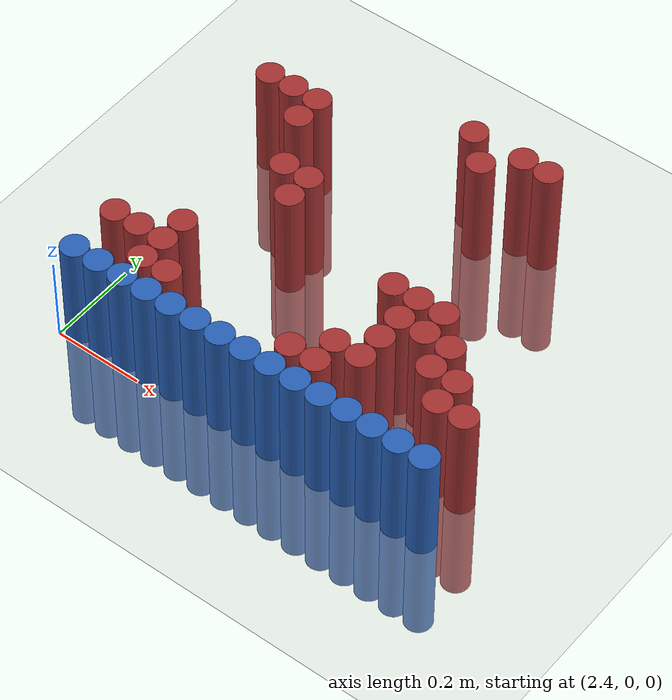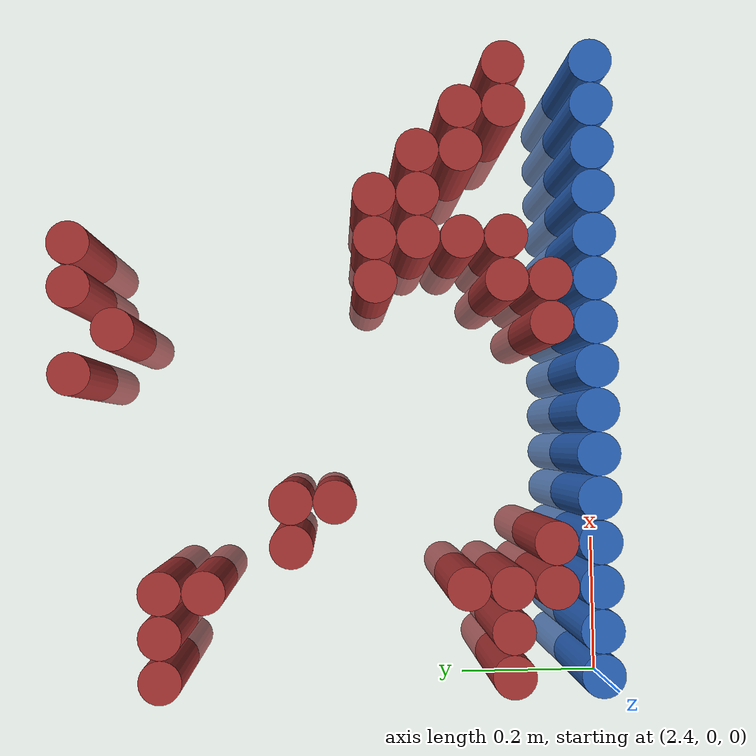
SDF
<sdf version="1.6">
 <world name="default">
  <model name="ground_plane">
   <static>1</static>
   <link name="link">
    <collision name="collision">
     <geometry><plane><normal>0 0 1</normal><size>100 100</size></plane></geometry>
     <surface><friction><ode><mu>100</mu><mu2>50</mu2></ode></friction></surface>
    </collision>
    <visual name="visual">
     <cast_shadows>0</cast_shadows>
     <geometry><plane><normal>0 0 1</normal><size>100 100</size></plane></geometry>
     <material>
      <script><uri>file://media/materials/scripts/gazebo.material</uri><name>Gazebo/Grey</name></script>
     </material>
    </visual>
   </link>
  </model>
  <model name="unit_cylinder_217">
   <static>1</static>
   <pose>2.850000 0.750000 0.000000 0.000000 0.000000 0.000000</pose>
   <link name="link">
    <inertial>
     <mass>1</mass>
     <inertia><ixx>0.145833</ixx><ixy>0</ixy><ixz>0</ixz><iyy>0.145833</iyy><iyz>0</iyz><izz>0.125</izz></inertia>
    </inertial>
    <collision name="collision">
     <geometry><cylinder><radius>0.030000</radius><length>0.5</length></cylinder></geometry>
    </collision>
    <visual name="visual">
     <geometry><cylinder><radius>0.030000</radius><length>0.5</length></cylinder></geometry>
     <material>
      <ambient>0.648000 0.192000 0.192000 1</ambient>
      <diffuse>0.648000 0.192000 0.192000 1</diffuse>
     </material>
     <material>
      <script><name>Gazebo/Grey</name><uri>file://media/materials/scripts/gazebo.material</uri></script>
     </material>
    </visual>
   </link>
  </model>
  <model name="unit_cylinder_218">
   <static>1</static>
   <pose>2.970000 0.750000 0.000000 0.000000 0.000000 0.000000</pose>
   <link name="link">
    <inertial>
     <mass>1</mass>
     <inertia><ixx>0.145833</ixx><ixy>0</ixy><ixz>0</ixz><iyy>0.145833</iyy><iyz>0</iyz><izz>0.125</izz></inertia>
    </inertial>
    <collision name="collision">
     <geometry><cylinder><radius>0.030000</radius><length>0.5</length></cylinder></geometry>
    </collision>
    <visual name="visual">
     <geometry><cylinder><radius>0.030000</radius><length>0.5</length></cylinder></geometry>
     <material>
      <ambient>0.648000 0.192000 0.192000 1</ambient>
      <diffuse>0.648000 0.192000 0.192000 1</diffuse>
     </material>
     <material>
      <script><name>Gazebo/Grey</name><uri>file://media/materials/scripts/gazebo.material</uri></script>
     </material>
    </visual>
   </link>
  </model>
  <model name="unit_cylinder_219">
   <static>1</static>
   <pose>3.030000 0.750000 0.000000 0.000000 0.000000 0.000000</pose>
   <link name="link">
    <inertial>
     <mass>1</mass>
     <inertia><ixx>0.145833</ixx><ixy>0</ixy><ixz>0</ixz><iyy>0.145833</iyy><iyz>0</iyz><izz>0.125</izz></inertia>
    </inertial>
    <collision name="collision">
     <geometry><cylinder><radius>0.030000</radius><length>0.5</length></cylinder></geometry>
    </collision>
    <visual name="visual">
     <geometry><cylinder><radius>0.030000</radius><length>0.5</length></cylinder></geometry>
     <material>
      <ambient>0.648000 0.192000 0.192000 1</ambient>
      <diffuse>0.648000 0.192000 0.192000 1</diffuse>
     </material>
     <material>
      <script><name>Gazebo/Grey</name><uri>file://media/materials/scripts/gazebo.material</uri></script>
     </material>
    </visual>
   </link>
  </model>
  <model name="unit_cylinder_231">
   <static>1</static>
   <pose>2.910000 0.690000 0.000000 0.000000 0.000000 0.000000</pose>
   <link name="link">
    <inertial>
     <mass>1</mass>
     <inertia><ixx>0.145833</ixx><ixy>0</ixy><ixz>0</ixz><iyy>0.145833</iyy><iyz>0</iyz><izz>0.125</izz></inertia>
    </inertial>
    <collision name="collision">
     <geometry><cylinder><radius>0.030000</radius><length>0.5</length></cylinder></geometry>
    </collision>
    <visual name="visual">
     <geometry><cylinder><radius>0.030000</radius><length>0.5</length></cylinder></geometry>
     <material>
      <ambient>0.648000 0.192000 0.192000 1</ambient>
      <diffuse>0.648000 0.192000 0.192000 1</diffuse>
     </material>
     <material>
      <script><name>Gazebo/Grey</name><uri>file://media/materials/scripts/gazebo.material</uri></script>
     </material>
    </visual>
   </link>
  </model>
  <model name="unit_cylinder_238">
   <static>1</static>
   <pose>2.430000 0.630000 0.000000 0.000000 0.000000 0.000000</pose>
   <link name="link">
    <inertial>
     <mass>1</mass>
     <inertia><ixx>0.145833</ixx><ixy>0</ixy><ixz>0</ixz><iyy>0.145833</iyy><iyz>0</iyz><izz>0.125</izz></inertia>
    </inertial>
    <collision name="collision">
     <geometry><cylinder><radius>0.030000</radius><length>0.5</length></cylinder></geometry>
    </collision>
    <visual name="visual">
     <geometry><cylinder><radius>0.030000</radius><length>0.5</length></cylinder></geometry>
     <material>
      <ambient>0.648000 0.192000 0.192000 1</ambient>
      <diffuse>0.648000 0.192000 0.192000 1</diffuse>
     </material>
     <material>
      <script><name>Gazebo/Grey</name><uri>file://media/materials/scripts/gazebo.material</uri></script>
     </material>
    </visual>
   </link>
  </model>
  <model name="unit_cylinder_239">
   <static>1</static>
   <pose>2.490000 0.630000 0.000000 0.000000 0.000000 0.000000</pose>
   <link name="link">
    <inertial>
     <mass>1</mass>
     <inertia><ixx>0.145833</ixx><ixy>0</ixy><ixz>0</ixz><iyy>0.145833</iyy><iyz>0</iyz><izz>0.125</izz></inertia>
    </inertial>
    <collision name="collision">
     <geometry><cylinder><radius>0.030000</radius><length>0.5</length></cylinder></geometry>
    </collision>
    <visual name="visual">
     <geometry><cylinder><radius>0.030000</radius><length>0.5</length></cylinder></geometry>
     <material>
      <ambient>0.648000 0.192000 0.192000 1</ambient>
      <diffuse>0.648000 0.192000 0.192000 1</diffuse>
     </material>
     <material>
      <script><name>Gazebo/Grey</name><uri>file://media/materials/scripts/gazebo.material</uri></script>
     </material>
    </visual>
   </link>
  </model>
  <model name="unit_cylinder_240">
   <static>1</static>
   <pose>2.550000 0.630000 0.000000 0.000000 0.000000 0.000000</pose>
   <link name="link">
    <inertial>
     <mass>1</mass>
     <inertia><ixx>0.145833</ixx><ixy>0</ixy><ixz>0</ixz><iyy>0.145833</iyy><iyz>0</iyz><izz>0.125</izz></inertia>
    </inertial>
    <collision name="collision">
     <geometry><cylinder><radius>0.030000</radius><length>0.5</length></cylinder></geometry>
    </collision>
    <visual name="visual">
     <geometry><cylinder><radius>0.030000</radius><length>0.5</length></cylinder></geometry>
     <material>
      <ambient>0.648000 0.192000 0.192000 1</ambient>
      <diffuse>0.648000 0.192000 0.192000 1</diffuse>
     </material>
     <material>
      <script><name>Gazebo/Grey</name><uri>file://media/materials/scripts/gazebo.material</uri></script>
     </material>
    </visual>
   </link>
  </model>
  <model name="unit_cylinder_245">
   <static>1</static>
   <pose>2.550000 0.570000 0.000000 0.000000 0.000000 0.000000</pose>
   <link name="link">
    <inertial>
     <mass>1</mass>
     <inertia><ixx>0.145833</ixx><ixy>0</ixy><ixz>0</ixz><iyy>0.145833</iyy><iyz>0</iyz><izz>0.125</izz></inertia>
    </inertial>
    <collision name="collision">
     <geometry><cylinder><radius>0.030000</radius><length>0.5</length></cylinder></geometry>
    </collision>
    <visual name="visual">
     <geometry><cylinder><radius>0.030000</radius><length>0.5</length></cylinder></geometry>
     <material>
      <ambient>0.648000 0.192000 0.192000 1</ambient>
      <diffuse>0.648000 0.192000 0.192000 1</diffuse>
     </material>
     <material>
      <script><name>Gazebo/Grey</name><uri>file://media/materials/scripts/gazebo.material</uri></script>
     </material>
    </visual>
   </link>
  </model>
  <model name="unit_cylinder_252">
   <static>1</static>
   <pose>2.610000 0.450000 0.000000 0.000000 0.000000 0.000000</pose>
   <link name="link">
    <inertial>
     <mass>1</mass>
     <inertia><ixx>0.145833</ixx><ixy>0</ixy><ixz>0</ixz><iyy>0.145833</iyy><iyz>0</iyz><izz>0.125</izz></inertia>
    </inertial>
    <collision name="collision">
     <geometry><cylinder><radius>0.030000</radius><length>0.5</length></cylinder></geometry>
    </collision>
    <visual name="visual">
     <geometry><cylinder><radius>0.030000</radius><length>0.5</length></cylinder></geometry>
     <material>
      <ambient>0.648000 0.192000 0.192000 1</ambient>
      <diffuse>0.648000 0.192000 0.192000 1</diffuse>
     </material>
     <material>
      <script><name>Gazebo/Grey</name><uri>file://media/materials/scripts/gazebo.material</uri></script>
     </material>
    </visual>
   </link>
  </model>
  <model name="unit_cylinder_253">
   <static>1</static>
   <pose>2.670000 0.450000 0.000000 0.000000 0.000000 0.000000</pose>
   <link name="link">
    <inertial>
     <mass>1</mass>
     <inertia><ixx>0.145833</ixx><ixy>0</ixy><ixz>0</ixz><iyy>0.145833</iyy><iyz>0</iyz><izz>0.125</izz></inertia>
    </inertial>
    <collision name="collision">
     <geometry><cylinder><radius>0.030000</radius><length>0.5</length></cylinder></geometry>
    </collision>
    <visual name="visual">
     <geometry><cylinder><radius>0.030000</radius><length>0.5</length></cylinder></geometry>
     <material>
      <ambient>0.648000 0.192000 0.192000 1</ambient>
      <diffuse>0.648000 0.192000 0.192000 1</diffuse>
     </material>
     <material>
      <script><name>Gazebo/Grey</name><uri>file://media/materials/scripts/gazebo.material</uri></script>
     </material>
    </visual>
   </link>
  </model>
  <model name="unit_cylinder_254">
   <static>1</static>
   <pose>2.670000 0.390000 0.000000 0.000000 0.000000 0.000000</pose>
   <link name="link">
    <inertial>
     <mass>1</mass>
     <inertia><ixx>0.145833</ixx><ixy>0</ixy><ixz>0</ixz><iyy>0.145833</iyy><iyz>0</iyz><izz>0.125</izz></inertia>
    </inertial>
    <collision name="collision">
     <geometry><cylinder><radius>0.030000</radius><length>0.5</length></cylinder></geometry>
    </collision>
    <visual name="visual">
     <geometry><cylinder><radius>0.030000</radius><length>0.5</length></cylinder></geometry>
     <material>
      <ambient>0.648000 0.192000 0.192000 1</ambient>
      <diffuse>0.648000 0.192000 0.192000 1</diffuse>
     </material>
     <material>
      <script><name>Gazebo/Grey</name><uri>file://media/materials/scripts/gazebo.material</uri></script>
     </material>
    </visual>
   </link>
  </model>
  <model name="unit_cylinder_258">
   <static>1</static>
   <pose>2.970000 0.330000 0.000000 0.000000 0.000000 0.000000</pose>
   <link name="link">
    <inertial>
     <mass>1</mass>
     <inertia><ixx>0.145833</ixx><ixy>0</ixy><ixz>0</ixz><iyy>0.145833</iyy><iyz>0</iyz><izz>0.125</izz></inertia>
    </inertial>
    <collision name="collision">
     <geometry><cylinder><radius>0.030000</radius><length>0.5</length></cylinder></geometry>
    </collision>
    <visual name="visual">
     <geometry><cylinder><radius>0.030000</radius><length>0.5</length></cylinder></geometry>
     <material>
      <ambient>0.648000 0.192000 0.192000 1</ambient>
      <diffuse>0.648000 0.192000 0.192000 1</diffuse>
     </material>
     <material>
      <script><name>Gazebo/Grey</name><uri>file://media/materials/scripts/gazebo.material</uri></script>
     </material>
    </visual>
   </link>
  </model>
  <model name="unit_cylinder_259">
   <static>1</static>
   <pose>3.030000 0.330000 0.000000 0.000000 0.000000 0.000000</pose>
   <link name="link">
    <inertial>
     <mass>1</mass>
     <inertia><ixx>0.145833</ixx><ixy>0</ixy><ixz>0</ixz><iyy>0.145833</iyy><iyz>0</iyz><izz>0.125</izz></inertia>
    </inertial>
    <collision name="collision">
     <geometry><cylinder><radius>0.030000</radius><length>0.5</length></cylinder></geometry>
    </collision>
    <visual name="visual">
     <geometry><cylinder><radius>0.030000</radius><length>0.5</length></cylinder></geometry>
     <material>
      <ambient>0.648000 0.192000 0.192000 1</ambient>
      <diffuse>0.648000 0.192000 0.192000 1</diffuse>
     </material>
     <material>
      <script><name>Gazebo/Grey</name><uri>file://media/materials/scripts/gazebo.material</uri></script>
     </material>
    </visual>
   </link>
  </model>
  <model name="unit_cylinder_260">
   <static>1</static>
   <pose>3.090000 0.330000 0.000000 0.000000 0.000000 0.000000</pose>
   <link name="link">
    <inertial>
     <mass>1</mass>
     <inertia><ixx>0.145833</ixx><ixy>0</ixy><ixz>0</ixz><iyy>0.145833</iyy><iyz>0</iyz><izz>0.125</izz></inertia>
    </inertial>
    <collision name="collision">
     <geometry><cylinder><radius>0.030000</radius><length>0.5</length></cylinder></geometry>
    </collision>
    <visual name="visual">
     <geometry><cylinder><radius>0.030000</radius><length>0.5</length></cylinder></geometry>
     <material>
      <ambient>0.648000 0.192000 0.192000 1</ambient>
      <diffuse>0.648000 0.192000 0.192000 1</diffuse>
     </material>
     <material>
      <script><name>Gazebo/Grey</name><uri>file://media/materials/scripts/gazebo.material</uri></script>
     </material>
    </visual>
   </link>
  </model>
  <model name="unit_cylinder_266">
   <static>1</static>
   <pose>3.030000 0.270000 0.000000 0.000000 0.000000 0.000000</pose>
   <link name="link">
    <inertial>
     <mass>1</mass>
     <inertia><ixx>0.145833</ixx><ixy>0</ixy><ixz>0</ixz><iyy>0.145833</iyy><iyz>0</iyz><izz>0.125</izz></inertia>
    </inertial>
    <collision name="collision">
     <geometry><cylinder><radius>0.030000</radius><length>0.5</length></cylinder></geometry>
    </collision>
    <visual name="visual">
     <geometry><cylinder><radius>0.030000</radius><length>0.5</length></cylinder></geometry>
     <material>
      <ambient>0.648000 0.192000 0.192000 1</ambient>
      <diffuse>0.648000 0.192000 0.192000 1</diffuse>
     </material>
     <material>
      <script><name>Gazebo/Grey</name><uri>file://media/materials/scripts/gazebo.material</uri></script>
     </material>
    </visual>
   </link>
  </model>
  <model name="unit_cylinder_267">
   <static>1</static>
   <pose>3.090000 0.270000 0.000000 0.000000 0.000000 0.000000</pose>
   <link name="link">
    <inertial>
     <mass>1</mass>
     <inertia><ixx>0.145833</ixx><ixy>0</ixy><ixz>0</ixz><iyy>0.145833</iyy><iyz>0</iyz><izz>0.125</izz></inertia>
    </inertial>
    <collision name="collision">
     <geometry><cylinder><radius>0.030000</radius><length>0.5</length></cylinder></geometry>
    </collision>
    <visual name="visual">
     <geometry><cylinder><radius>0.030000</radius><length>0.5</length></cylinder></geometry>
     <material>
      <ambient>0.648000 0.192000 0.192000 1</ambient>
      <diffuse>0.648000 0.192000 0.192000 1</diffuse>
     </material>
     <material>
      <script><name>Gazebo/Grey</name><uri>file://media/materials/scripts/gazebo.material</uri></script>
     </material>
    </visual>
   </link>
  </model>
  <model name="unit_cylinder_268">
   <static>1</static>
   <pose>3.150000 0.270000 0.000000 0.000000 0.000000 0.000000</pose>
   <link name="link">
    <inertial>
     <mass>1</mass>
     <inertia><ixx>0.145833</ixx><ixy>0</ixy><ixz>0</ixz><iyy>0.145833</iyy><iyz>0</iyz><izz>0.125</izz></inertia>
    </inertial>
    <collision name="collision">
     <geometry><cylinder><radius>0.030000</radius><length>0.5</length></cylinder></geometry>
    </collision>
    <visual name="visual">
     <geometry><cylinder><radius>0.030000</radius><length>0.5</length></cylinder></geometry>
     <material>
      <ambient>0.648000 0.192000 0.192000 1</ambient>
      <diffuse>0.648000 0.192000 0.192000 1</diffuse>
     </material>
     <material>
      <script><name>Gazebo/Grey</name><uri>file://media/materials/scripts/gazebo.material</uri></script>
     </material>
    </visual>
   </link>
  </model>
  <model name="unit_cylinder_276">
   <static>1</static>
   <pose>2.550000 0.210000 0.000000 0.000000 0.000000 0.000000</pose>
   <link name="link">
    <inertial>
     <mass>1</mass>
     <inertia><ixx>0.145833</ixx><ixy>0</ixy><ixz>0</ixz><iyy>0.145833</iyy><iyz>0</iyz><izz>0.125</izz></inertia>
    </inertial>
    <collision name="collision">
     <geometry><cylinder><radius>0.030000</radius><length>0.5</length></cylinder></geometry>
    </collision>
    <visual name="visual">
     <geometry><cylinder><radius>0.030000</radius><length>0.5</length></cylinder></geometry>
     <material>
      <ambient>0.648000 0.192000 0.192000 1</ambient>
      <diffuse>0.648000 0.192000 0.192000 1</diffuse>
     </material>
     <material>
      <script><name>Gazebo/Grey</name><uri>file://media/materials/scripts/gazebo.material</uri></script>
     </material>
    </visual>
   </link>
  </model>
  <model name="unit_cylinder_277">
   <static>1</static>
   <pose>3.030000 0.210000 0.000000 0.000000 0.000000 0.000000</pose>
   <link name="link">
    <inertial>
     <mass>1</mass>
     <inertia><ixx>0.145833</ixx><ixy>0</ixy><ixz>0</ixz><iyy>0.145833</iyy><iyz>0</iyz><izz>0.125</izz></inertia>
    </inertial>
    <collision name="collision">
     <geometry><cylinder><radius>0.030000</radius><length>0.5</length></cylinder></geometry>
    </collision>
    <visual name="visual">
     <geometry><cylinder><radius>0.030000</radius><length>0.5</length></cylinder></geometry>
     <material>
      <ambient>0.648000 0.192000 0.192000 1</ambient>
      <diffuse>0.648000 0.192000 0.192000 1</diffuse>
     </material>
     <material>
      <script><name>Gazebo/Grey</name><uri>file://media/materials/scripts/gazebo.material</uri></script>
     </material>
    </visual>
   </link>
  </model>
  <model name="unit_cylinder_278">
   <static>1</static>
   <pose>3.150000 0.210000 0.000000 0.000000 0.000000 0.000000</pose>
   <link name="link">
    <inertial>
     <mass>1</mass>
     <inertia><ixx>0.145833</ixx><ixy>0</ixy><ixz>0</ixz><iyy>0.145833</iyy><iyz>0</iyz><izz>0.125</izz></inertia>
    </inertial>
    <collision name="collision">
     <geometry><cylinder><radius>0.030000</radius><length>0.5</length></cylinder></geometry>
    </collision>
    <visual name="visual">
     <geometry><cylinder><radius>0.030000</radius><length>0.5</length></cylinder></geometry>
     <material>
      <ambient>0.648000 0.192000 0.192000 1</ambient>
      <diffuse>0.648000 0.192000 0.192000 1</diffuse>
     </material>
     <material>
      <script><name>Gazebo/Grey</name><uri>file://media/materials/scripts/gazebo.material</uri></script>
     </material>
    </visual>
   </link>
  </model>
  <model name="unit_cylinder_279">
   <static>1</static>
   <pose>3.210000 0.210000 0.000000 0.000000 0.000000 0.000000</pose>
   <link name="link">
    <inertial>
     <mass>1</mass>
     <inertia><ixx>0.145833</ixx><ixy>0</ixy><ixz>0</ixz><iyy>0.145833</iyy><iyz>0</iyz><izz>0.125</izz></inertia>
    </inertial>
    <collision name="collision">
     <geometry><cylinder><radius>0.030000</radius><length>0.5</length></cylinder></geometry>
    </collision>
    <visual name="visual">
     <geometry><cylinder><radius>0.030000</radius><length>0.5</length></cylinder></geometry>
     <material>
      <ambient>0.648000 0.192000 0.192000 1</ambient>
      <diffuse>0.648000 0.192000 0.192000 1</diffuse>
     </material>
     <material>
      <script><name>Gazebo/Grey</name><uri>file://media/materials/scripts/gazebo.material</uri></script>
     </material>
    </visual>
   </link>
  </model>
  <model name="unit_cylinder_285">
   <static>1</static>
   <pose>2.430000 0.150000 0.000000 0.000000 0.000000 0.000000</pose>
   <link name="link">
    <inertial>
     <mass>1</mass>
     <inertia><ixx>0.145833</ixx><ixy>0</ixy><ixz>0</ixz><iyy>0.145833</iyy><iyz>0</iyz><izz>0.125</izz></inertia>
    </inertial>
    <collision name="collision">
     <geometry><cylinder><radius>0.030000</radius><length>0.5</length></cylinder></geometry>
    </collision>
    <visual name="visual">
     <geometry><cylinder><radius>0.030000</radius><length>0.5</length></cylinder></geometry>
     <material>
      <ambient>0.648000 0.192000 0.192000 1</ambient>
      <diffuse>0.648000 0.192000 0.192000 1</diffuse>
     </material>
     <material>
      <script><name>Gazebo/Grey</name><uri>file://media/materials/scripts/gazebo.material</uri></script>
     </material>
    </visual>
   </link>
  </model>
  <model name="unit_cylinder_286">
   <static>1</static>
   <pose>2.490000 0.150000 0.000000 0.000000 0.000000 0.000000</pose>
   <link name="link">
    <inertial>
     <mass>1</mass>
     <inertia><ixx>0.145833</ixx><ixy>0</ixy><ixz>0</ixz><iyy>0.145833</iyy><iyz>0</iyz><izz>0.125</izz></inertia>
    </inertial>
    <collision name="collision">
     <geometry><cylinder><radius>0.030000</radius><length>0.5</length></cylinder></geometry>
    </collision>
    <visual name="visual">
     <geometry><cylinder><radius>0.030000</radius><length>0.5</length></cylinder></geometry>
     <material>
      <ambient>0.648000 0.192000 0.192000 1</ambient>
      <diffuse>0.648000 0.192000 0.192000 1</diffuse>
     </material>
     <material>
      <script><name>Gazebo/Grey</name><uri>file://media/materials/scripts/gazebo.material</uri></script>
     </material>
    </visual>
   </link>
  </model>
  <model name="unit_cylinder_287">
   <static>1</static>
   <pose>2.550000 0.150000 0.000000 0.000000 0.000000 0.000000</pose>
   <link name="link">
    <inertial>
     <mass>1</mass>
     <inertia><ixx>0.145833</ixx><ixy>0</ixy><ixz>0</ixz><iyy>0.145833</iyy><iyz>0</iyz><izz>0.125</izz></inertia>
    </inertial>
    <collision name="collision">
     <geometry><cylinder><radius>0.030000</radius><length>0.5</length></cylinder></geometry>
    </collision>
    <visual name="visual">
     <geometry><cylinder><radius>0.030000</radius><length>0.5</length></cylinder></geometry>
     <material>
      <ambient>0.648000 0.192000 0.192000 1</ambient>
      <diffuse>0.648000 0.192000 0.192000 1</diffuse>
     </material>
     <material>
      <script><name>Gazebo/Grey</name><uri>file://media/materials/scripts/gazebo.material</uri></script>
     </material>
    </visual>
   </link>
  </model>
  <model name="unit_cylinder_288">
   <static>1</static>
   <pose>2.970000 0.150000 0.000000 0.000000 0.000000 0.000000</pose>
   <link name="link">
    <inertial>
     <mass>1</mass>
     <inertia><ixx>0.145833</ixx><ixy>0</ixy><ixz>0</ixz><iyy>0.145833</iyy><iyz>0</iyz><izz>0.125</izz></inertia>
    </inertial>
    <collision name="collision">
     <geometry><cylinder><radius>0.030000</radius><length>0.5</length></cylinder></geometry>
    </collision>
    <visual name="visual">
     <geometry><cylinder><radius>0.030000</radius><length>0.5</length></cylinder></geometry>
     <material>
      <ambient>0.648000 0.192000 0.192000 1</ambient>
      <diffuse>0.648000 0.192000 0.192000 1</diffuse>
     </material>
     <material>
      <script><name>Gazebo/Grey</name><uri>file://media/materials/scripts/gazebo.material</uri></script>
     </material>
    </visual>
   </link>
  </model>
  <model name="unit_cylinder_289">
   <static>1</static>
   <pose>3.030000 0.150000 0.000000 0.000000 0.000000 0.000000</pose>
   <link name="link">
    <inertial>
     <mass>1</mass>
     <inertia><ixx>0.145833</ixx><ixy>0</ixy><ixz>0</ixz><iyy>0.145833</iyy><iyz>0</iyz><izz>0.125</izz></inertia>
    </inertial>
    <collision name="collision">
     <geometry><cylinder><radius>0.030000</radius><length>0.5</length></cylinder></geometry>
    </collision>
    <visual name="visual">
     <geometry><cylinder><radius>0.030000</radius><length>0.5</length></cylinder></geometry>
     <material>
      <ambient>0.648000 0.192000 0.192000 1</ambient>
      <diffuse>0.648000 0.192000 0.192000 1</diffuse>
     </material>
     <material>
      <script><name>Gazebo/Grey</name><uri>file://media/materials/scripts/gazebo.material</uri></script>
     </material>
    </visual>
   </link>
  </model>
  <model name="unit_cylinder_290">
   <static>1</static>
   <pose>3.210000 0.150000 0.000000 0.000000 0.000000 0.000000</pose>
   <link name="link">
    <inertial>
     <mass>1</mass>
     <inertia><ixx>0.145833</ixx><ixy>0</ixy><ixz>0</ixz><iyy>0.145833</iyy><iyz>0</iyz><izz>0.125</izz></inertia>
    </inertial>
    <collision name="collision">
     <geometry><cylinder><radius>0.030000</radius><length>0.5</length></cylinder></geometry>
    </collision>
    <visual name="visual">
     <geometry><cylinder><radius>0.030000</radius><length>0.5</length></cylinder></geometry>
     <material>
      <ambient>0.648000 0.192000 0.192000 1</ambient>
      <diffuse>0.648000 0.192000 0.192000 1</diffuse>
     </material>
     <material>
      <script><name>Gazebo/Grey</name><uri>file://media/materials/scripts/gazebo.material</uri></script>
     </material>
    </visual>
   </link>
  </model>
  <model name="unit_cylinder_291">
   <static>1</static>
   <pose>3.270000 0.150000 0.000000 0.000000 0.000000 0.000000</pose>
   <link name="link">
    <inertial>
     <mass>1</mass>
     <inertia><ixx>0.145833</ixx><ixy>0</ixy><ixz>0</ixz><iyy>0.145833</iyy><iyz>0</iyz><izz>0.125</izz></inertia>
    </inertial>
    <collision name="collision">
     <geometry><cylinder><radius>0.030000</radius><length>0.5</length></cylinder></geometry>
    </collision>
    <visual name="visual">
     <geometry><cylinder><radius>0.030000</radius><length>0.5</length></cylinder></geometry>
     <material>
      <ambient>0.648000 0.192000 0.192000 1</ambient>
      <diffuse>0.648000 0.192000 0.192000 1</diffuse>
     </material>
     <material>
      <script><name>Gazebo/Grey</name><uri>file://media/materials/scripts/gazebo.material</uri></script>
     </material>
    </visual>
   </link>
  </model>
  <model name="unit_cylinder_299">
   <static>1</static>
   <pose>2.550000 0.090000 0.000000 0.000000 0.000000 0.000000</pose>
   <link name="link">
    <inertial>
     <mass>1</mass>
     <inertia><ixx>0.145833</ixx><ixy>0</ixy><ixz>0</ixz><iyy>0.145833</iyy><iyz>0</iyz><izz>0.125</izz></inertia>
    </inertial>
    <collision name="collision">
     <geometry><cylinder><radius>0.030000</radius><length>0.5</length></cylinder></geometry>
    </collision>
    <visual name="visual">
     <geometry><cylinder><radius>0.030000</radius><length>0.5</length></cylinder></geometry>
     <material>
      <ambient>0.648000 0.192000 0.192000 1</ambient>
      <diffuse>0.648000 0.192000 0.192000 1</diffuse>
     </material>
     <material>
      <script><name>Gazebo/Grey</name><uri>file://media/materials/scripts/gazebo.material</uri></script>
     </material>
    </visual>
   </link>
  </model>
  <model name="unit_cylinder_300">
   <static>1</static>
   <pose>2.610000 0.090000 0.000000 0.000000 0.000000 0.000000</pose>
   <link name="link">
    <inertial>
     <mass>1</mass>
     <inertia><ixx>0.145833</ixx><ixy>0</ixy><ixz>0</ixz><iyy>0.145833</iyy><iyz>0</iyz><izz>0.125</izz></inertia>
    </inertial>
    <collision name="collision">
     <geometry><cylinder><radius>0.030000</radius><length>0.5</length></cylinder></geometry>
    </collision>
    <visual name="visual">
     <geometry><cylinder><radius>0.030000</radius><length>0.5</length></cylinder></geometry>
     <material>
      <ambient>0.648000 0.192000 0.192000 1</ambient>
      <diffuse>0.648000 0.192000 0.192000 1</diffuse>
     </material>
     <material>
      <script><name>Gazebo/Grey</name><uri>file://media/materials/scripts/gazebo.material</uri></script>
     </material>
    </visual>
   </link>
  </model>
  <model name="unit_cylinder_301">
   <static>1</static>
   <pose>2.910000 0.090000 0.000000 0.000000 0.000000 0.000000</pose>
   <link name="link">
    <inertial>
     <mass>1</mass>
     <inertia><ixx>0.145833</ixx><ixy>0</ixy><ixz>0</ixz><iyy>0.145833</iyy><iyz>0</iyz><izz>0.125</izz></inertia>
    </inertial>
    <collision name="collision">
     <geometry><cylinder><radius>0.030000</radius><length>0.5</length></cylinder></geometry>
    </collision>
    <visual name="visual">
     <geometry><cylinder><radius>0.030000</radius><length>0.5</length></cylinder></geometry>
     <material>
      <ambient>0.648000 0.192000 0.192000 1</ambient>
      <diffuse>0.648000 0.192000 0.192000 1</diffuse>
     </material>
     <material>
      <script><name>Gazebo/Grey</name><uri>file://media/materials/scripts/gazebo.material</uri></script>
     </material>
    </visual>
   </link>
  </model>
  <model name="unit_cylinder_302">
   <static>1</static>
   <pose>2.970000 0.090000 0.000000 0.000000 0.000000 0.000000</pose>
   <link name="link">
    <inertial>
     <mass>1</mass>
     <inertia><ixx>0.145833</ixx><ixy>0</ixy><ixz>0</ixz><iyy>0.145833</iyy><iyz>0</iyz><izz>0.125</izz></inertia>
    </inertial>
    <collision name="collision">
     <geometry><cylinder><radius>0.030000</radius><length>0.5</length></cylinder></geometry>
    </collision>
    <visual name="visual">
     <geometry><cylinder><radius>0.030000</radius><length>0.5</length></cylinder></geometry>
     <material>
      <ambient>0.648000 0.192000 0.192000 1</ambient>
      <diffuse>0.648000 0.192000 0.192000 1</diffuse>
     </material>
     <material>
      <script><name>Gazebo/Grey</name><uri>file://media/materials/scripts/gazebo.material</uri></script>
     </material>
    </visual>
   </link>
  </model>
  <model name="unit_cylinder_311">
   <static>1</static>
   <pose>2.430000 0.030000 0.000000 0.000000 0.000000 0.000000</pose>
   <link name="link">
    <inertial>
     <mass>1</mass>
     <inertia><ixx>0.145833</ixx><ixy>0</ixy><ixz>0</ixz><iyy>0.145833</iyy><iyz>0</iyz><izz>0.125</izz></inertia>
    </inertial>
    <collision name="collision">
     <geometry><cylinder><radius>0.030000</radius><length>0.5</length></cylinder></geometry>
    </collision>
    <visual name="visual">
     <geometry><cylinder><radius>0.030000</radius><length>0.5</length></cylinder></geometry>
     <material>
      <ambient>0.152000 0.379000 0.720000 1</ambient>
      <diffuse>0.152000 0.379000 0.720000 1</diffuse>
     </material>
     <material>
      <script><name>Gazebo/Grey</name><uri>file://media/materials/scripts/gazebo.material</uri></script>
     </material>
    </visual>
   </link>
  </model>
  <model name="unit_cylinder_312">
   <static>1</static>
   <pose>2.490000 0.030000 0.000000 0.000000 0.000000 0.000000</pose>
   <link name="link">
    <inertial>
     <mass>1</mass>
     <inertia><ixx>0.145833</ixx><ixy>0</ixy><ixz>0</ixz><iyy>0.145833</iyy><iyz>0</iyz><izz>0.125</izz></inertia>
    </inertial>
    <collision name="collision">
     <geometry><cylinder><radius>0.030000</radius><length>0.5</length></cylinder></geometry>
    </collision>
    <visual name="visual">
     <geometry><cylinder><radius>0.030000</radius><length>0.5</length></cylinder></geometry>
     <material>
      <ambient>0.152000 0.379000 0.720000 1</ambient>
      <diffuse>0.152000 0.379000 0.720000 1</diffuse>
     </material>
     <material>
      <script><name>Gazebo/Grey</name><uri>file://media/materials/scripts/gazebo.material</uri></script>
     </material>
    </visual>
   </link>
  </model>
  <model name="unit_cylinder_313">
   <static>1</static>
   <pose>2.550000 0.030000 0.000000 0.000000 0.000000 0.000000</pose>
   <link name="link">
    <inertial>
     <mass>1</mass>
     <inertia><ixx>0.145833</ixx><ixy>0</ixy><ixz>0</ixz><iyy>0.145833</iyy><iyz>0</iyz><izz>0.125</izz></inertia>
    </inertial>
    <collision name="collision">
     <geometry><cylinder><radius>0.030000</radius><length>0.5</length></cylinder></geometry>
    </collision>
    <visual name="visual">
     <geometry><cylinder><radius>0.030000</radius><length>0.5</length></cylinder></geometry>
     <material>
      <ambient>0.152000 0.379000 0.720000 1</ambient>
      <diffuse>0.152000 0.379000 0.720000 1</diffuse>
     </material>
     <material>
      <script><name>Gazebo/Grey</name><uri>file://media/materials/scripts/gazebo.material</uri></script>
     </material>
    </visual>
   </link>
  </model>
  <model name="unit_cylinder_314">
   <static>1</static>
   <pose>2.610000 0.030000 0.000000 0.000000 0.000000 0.000000</pose>
   <link name="link">
    <inertial>
     <mass>1</mass>
     <inertia><ixx>0.145833</ixx><ixy>0</ixy><ixz>0</ixz><iyy>0.145833</iyy><iyz>0</iyz><izz>0.125</izz></inertia>
    </inertial>
    <collision name="collision">
     <geometry><cylinder><radius>0.030000</radius><length>0.5</length></cylinder></geometry>
    </collision>
    <visual name="visual">
     <geometry><cylinder><radius>0.030000</radius><length>0.5</length></cylinder></geometry>
     <material>
      <ambient>0.152000 0.379000 0.720000 1</ambient>
      <diffuse>0.152000 0.379000 0.720000 1</diffuse>
     </material>
     <material>
      <script><name>Gazebo/Grey</name><uri>file://media/materials/scripts/gazebo.material</uri></script>
     </material>
    </visual>
   </link>
  </model>
  <model name="unit_cylinder_315">
   <static>1</static>
   <pose>2.670000 0.030000 0.000000 0.000000 0.000000 0.000000</pose>
   <link name="link">
    <inertial>
     <mass>1</mass>
     <inertia><ixx>0.145833</ixx><ixy>0</ixy><ixz>0</ixz><iyy>0.145833</iyy><iyz>0</iyz><izz>0.125</izz></inertia>
    </inertial>
    <collision name="collision">
     <geometry><cylinder><radius>0.030000</radius><length>0.5</length></cylinder></geometry>
    </collision>
    <visual name="visual">
     <geometry><cylinder><radius>0.030000</radius><length>0.5</length></cylinder></geometry>
     <material>
      <ambient>0.152000 0.379000 0.720000 1</ambient>
      <diffuse>0.152000 0.379000 0.720000 1</diffuse>
     </material>
     <material>
      <script><name>Gazebo/Grey</name><uri>file://media/materials/scripts/gazebo.material</uri></script>
     </material>
    </visual>
   </link>
  </model>
  <model name="unit_cylinder_316">
   <static>1</static>
   <pose>2.730000 0.030000 0.000000 0.000000 0.000000 0.000000</pose>
   <link name="link">
    <inertial>
     <mass>1</mass>
     <inertia><ixx>0.145833</ixx><ixy>0</ixy><ixz>0</ixz><iyy>0.145833</iyy><iyz>0</iyz><izz>0.125</izz></inertia>
    </inertial>
    <collision name="collision">
     <geometry><cylinder><radius>0.030000</radius><length>0.5</length></cylinder></geometry>
    </collision>
    <visual name="visual">
     <geometry><cylinder><radius>0.030000</radius><length>0.5</length></cylinder></geometry>
     <material>
      <ambient>0.152000 0.379000 0.720000 1</ambient>
      <diffuse>0.152000 0.379000 0.720000 1</diffuse>
     </material>
     <material>
      <script><name>Gazebo/Grey</name><uri>file://media/materials/scripts/gazebo.material</uri></script>
     </material>
    </visual>
   </link>
  </model>
  <model name="unit_cylinder_317">
   <static>1</static>
   <pose>2.790000 0.030000 0.000000 0.000000 0.000000 0.000000</pose>
   <link name="link">
    <inertial>
     <mass>1</mass>
     <inertia><ixx>0.145833</ixx><ixy>0</ixy><ixz>0</ixz><iyy>0.145833</iyy><iyz>0</iyz><izz>0.125</izz></inertia>
    </inertial>
    <collision name="collision">
     <geometry><cylinder><radius>0.030000</radius><length>0.5</length></cylinder></geometry>
    </collision>
    <visual name="visual">
     <geometry><cylinder><radius>0.030000</radius><length>0.5</length></cylinder></geometry>
     <material>
      <ambient>0.152000 0.379000 0.720000 1</ambient>
      <diffuse>0.152000 0.379000 0.720000 1</diffuse>
     </material>
     <material>
      <script><name>Gazebo/Grey</name><uri>file://media/materials/scripts/gazebo.material</uri></script>
     </material>
    </visual>
   </link>
  </model>
  <model name="unit_cylinder_318">
   <static>1</static>
   <pose>2.850000 0.030000 0.000000 0.000000 0.000000 0.000000</pose>
   <link name="link">
    <inertial>
     <mass>1</mass>
     <inertia><ixx>0.145833</ixx><ixy>0</ixy><ixz>0</ixz><iyy>0.145833</iyy><iyz>0</iyz><izz>0.125</izz></inertia>
    </inertial>
    <collision name="collision">
     <geometry><cylinder><radius>0.030000</radius><length>0.5</length></cylinder></geometry>
    </collision>
    <visual name="visual">
     <geometry><cylinder><radius>0.030000</radius><length>0.5</length></cylinder></geometry>
     <material>
      <ambient>0.152000 0.379000 0.720000 1</ambient>
      <diffuse>0.152000 0.379000 0.720000 1</diffuse>
     </material>
     <material>
      <script><name>Gazebo/Grey</name><uri>file://media/materials/scripts/gazebo.material</uri></script>
     </material>
    </visual>
   </link>
  </model>
  <model name="unit_cylinder_319">
   <static>1</static>
   <pose>2.910000 0.030000 0.000000 0.000000 0.000000 0.000000</pose>
   <link name="link">
    <inertial>
     <mass>1</mass>
     <inertia><ixx>0.145833</ixx><ixy>0</ixy><ixz>0</ixz><iyy>0.145833</iyy><iyz>0</iyz><izz>0.125</izz></inertia>
    </inertial>
    <collision name="collision">
     <geometry><cylinder><radius>0.030000</radius><length>0.5</length></cylinder></geometry>
    </collision>
    <visual name="visual">
     <geometry><cylinder><radius>0.030000</radius><length>0.5</length></cylinder></geometry>
     <material>
      <ambient>0.152000 0.379000 0.720000 1</ambient>
      <diffuse>0.152000 0.379000 0.720000 1</diffuse>
     </material>
     <material>
      <script><name>Gazebo/Grey</name><uri>file://media/materials/scripts/gazebo.material</uri></script>
     </material>
    </visual>
   </link>
  </model>
  <model name="unit_cylinder_320">
   <static>1</static>
   <pose>2.970000 0.030000 0.000000 0.000000 0.000000 0.000000</pose>
   <link name="link">
    <inertial>
     <mass>1</mass>
     <inertia><ixx>0.145833</ixx><ixy>0</ixy><ixz>0</ixz><iyy>0.145833</iyy><iyz>0</iyz><izz>0.125</izz></inertia>
    </inertial>
    <collision name="collision">
     <geometry><cylinder><radius>0.030000</radius><length>0.5</length></cylinder></geometry>
    </collision>
    <visual name="visual">
     <geometry><cylinder><radius>0.030000</radius><length>0.5</length></cylinder></geometry>
     <material>
      <ambient>0.152000 0.379000 0.720000 1</ambient>
      <diffuse>0.152000 0.379000 0.720000 1</diffuse>
     </material>
     <material>
      <script><name>Gazebo/Grey</name><uri>file://media/materials/scripts/gazebo.material</uri></script>
     </material>
    </visual>
   </link>
  </model>
  <model name="unit_cylinder_321">
   <static>1</static>
   <pose>3.030000 0.030000 0.000000 0.000000 0.000000 0.000000</pose>
   <link name="link">
    <inertial>
     <mass>1</mass>
     <inertia><ixx>0.145833</ixx><ixy>0</ixy><ixz>0</ixz><iyy>0.145833</iyy><iyz>0</iyz><izz>0.125</izz></inertia>
    </inertial>
    <collision name="collision">
     <geometry><cylinder><radius>0.030000</radius><length>0.5</length></cylinder></geometry>
    </collision>
    <visual name="visual">
     <geometry><cylinder><radius>0.030000</radius><length>0.5</length></cylinder></geometry>
     <material>
      <ambient>0.152000 0.379000 0.720000 1</ambient>
      <diffuse>0.152000 0.379000 0.720000 1</diffuse>
     </material>
     <material>
      <script><name>Gazebo/Grey</name><uri>file://media/materials/scripts/gazebo.material</uri></script>
     </material>
    </visual>
   </link>
  </model>
  <model name="unit_cylinder_322">
   <static>1</static>
   <pose>3.090000 0.030000 0.000000 0.000000 0.000000 0.000000</pose>
   <link name="link">
    <inertial>
     <mass>1</mass>
     <inertia><ixx>0.145833</ixx><ixy>0</ixy><ixz>0</ixz><iyy>0.145833</iyy><iyz>0</iyz><izz>0.125</izz></inertia>
    </inertial>
    <collision name="collision">
     <geometry><cylinder><radius>0.030000</radius><length>0.5</length></cylinder></geometry>
    </collision>
    <visual name="visual">
     <geometry><cylinder><radius>0.030000</radius><length>0.5</length></cylinder></geometry>
     <material>
      <ambient>0.152000 0.379000 0.720000 1</ambient>
      <diffuse>0.152000 0.379000 0.720000 1</diffuse>
     </material>
     <material>
      <script><name>Gazebo/Grey</name><uri>file://media/materials/scripts/gazebo.material</uri></script>
     </material>
    </visual>
   </link>
  </model>
  <model name="unit_cylinder_323">
   <static>1</static>
   <pose>3.150000 0.030000 0.000000 0.000000 0.000000 0.000000</pose>
   <link name="link">
    <inertial>
     <mass>1</mass>
     <inertia><ixx>0.145833</ixx><ixy>0</ixy><ixz>0</ixz><iyy>0.145833</iyy><iyz>0</iyz><izz>0.125</izz></inertia>
    </inertial>
    <collision name="collision">
     <geometry><cylinder><radius>0.030000</radius><length>0.5</length></cylinder></geometry>
    </collision>
    <visual name="visual">
     <geometry><cylinder><radius>0.030000</radius><length>0.5</length></cylinder></geometry>
     <material>
      <ambient>0.152000 0.379000 0.720000 1</ambient>
      <diffuse>0.152000 0.379000 0.720000 1</diffuse>
     </material>
     <material>
      <script><name>Gazebo/Grey</name><uri>file://media/materials/scripts/gazebo.material</uri></script>
     </material>
    </visual>
   </link>
  </model>
  <model name="unit_cylinder_324">
   <static>1</static>
   <pose>3.210000 0.030000 0.000000 0.000000 0.000000 0.000000</pose>
   <link name="link">
    <inertial>
     <mass>1</mass>
     <inertia><ixx>0.145833</ixx><ixy>0</ixy><ixz>0</ixz><iyy>0.145833</iyy><iyz>0</iyz><izz>0.125</izz></inertia>
    </inertial>
    <collision name="collision">
     <geometry><cylinder><radius>0.030000</radius><length>0.5</length></cylinder></geometry>
    </collision>
    <visual name="visual">
     <geometry><cylinder><radius>0.030000</radius><length>0.5</length></cylinder></geometry>
     <material>
      <ambient>0.152000 0.379000 0.720000 1</ambient>
      <diffuse>0.152000 0.379000 0.720000 1</diffuse>
     </material>
     <material>
      <script><name>Gazebo/Grey</name><uri>file://media/materials/scripts/gazebo.material</uri></script>
     </material>
    </visual>
   </link>
  </model>
  <model name="unit_cylinder_325">
   <static>1</static>
   <pose>3.270000 0.030000 0.000000 0.000000 0.000000 0.000000</pose>
   <link name="link">
    <inertial>
     <mass>1</mass>
     <inertia><ixx>0.145833</ixx><ixy>0</ixy><ixz>0</ixz><iyy>0.145833</iyy><iyz>0</iyz><izz>0.125</izz></inertia>
    </inertial>
    <collision name="collision">
     <geometry><cylinder><radius>0.030000</radius><length>0.5</length></cylinder></geometry>
    </collision>
    <visual name="visual">
     <geometry><cylinder><radius>0.030000</radius><length>0.5</length></cylinder></geometry>
     <material>
      <ambient>0.152000 0.379000 0.720000 1</ambient>
      <diffuse>0.152000 0.379000 0.720000 1</diffuse>
     </material>
     <material>
      <script><name>Gazebo/Grey</name><uri>file://media/materials/scripts/gazebo.material</uri></script>
     </material>
    </visual>
   </link>
  </model>
 </world>
</sdf>
